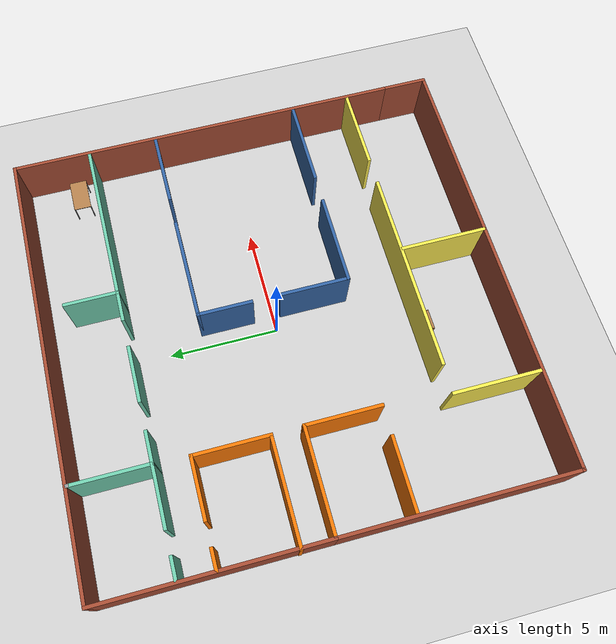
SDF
<sdf version="1.6">
 <world name="default">
  <plugin filename="libwelcome_message.so" name="hello"/>
  <light name="sun" type="directional">
   <pose>0 0 10 0 -0 0</pose>
   <diffuse>0.8 0.8 0.8 1</diffuse>
   <specular>0.2 0.2 0.2 1</specular>
   <attenuation>
    <range>1000</range>
    <constant>0.9</constant>
    <linear>0.01</linear>
    <quadratic>0.001</quadratic>
   </attenuation>
   <direction>-0.5 0.1 -0.9</direction>
  </light>
  <model name="ground_plane">
   <static>1</static>
   <link name="link">
    <collision name="collision">
     <geometry><plane><normal>0 0 1</normal><size>100 100</size></plane></geometry>
     <surface>
      <contact><collide_bitmask>65535</collide_bitmask></contact>
      <friction><ode><mu>100</mu><mu2>50</mu2></ode></friction>
     </surface>
    </collision>
    <visual name="visual">
     <cast_shadows>0</cast_shadows>
     <geometry><plane><normal>0 0 1</normal><size>100 100</size></plane></geometry>
     <material>
      <script><uri>file://media/materials/scripts/gazebo.material</uri><name>Gazebo/Grey</name></script>
     </material>
    </visual>
   </link>
  </model>
  <gravity>0 0 -9.8</gravity>
  <magnetic_field>6e-06 2.3e-05 -4.2e-05</magnetic_field>
  <atmosphere type="adiabatic"/>
  <physics default="0" name="default_physics" type="ode">
   <max_step_size>0.001</max_step_size>
   <real_time_factor>1</real_time_factor>
   <real_time_update_rate>1000</real_time_update_rate>
  </physics>
  <scene><ambient>0.4 0.4 0.4 1</ambient><background>0.7 0.7 0.7 1</background><shadows>1</shadows></scene>
  <audio><device>default</device></audio>
  <spherical_coordinates>
   <surface_model>EARTH_WGS84</surface_model>
   <latitude_deg>0</latitude_deg>
   <longitude_deg>0</longitude_deg>
   <elevation>0</elevation>
   <heading_deg>0</heading_deg>
  </spherical_coordinates>
  <model name="Building">
   <pose>0.112706 -0.057024 0 0 -0 0</pose>
   <link name="Wall_20">
    <collision name="Wall_20_Collision">
     <geometry><box><size>10 0.15 2.5</size></box></geometry>
     <pose>0 0 1.25 0 -0 0</pose>
    </collision>
    <visual name="Wall_20_Visual">
     <pose>0 0 1.25 0 -0 0</pose>
     <geometry><box><size>10 0.15 2.5</size></box></geometry>
     <material>
      <script><uri>file://media/materials/scripts/gazebo.material</uri><name>Gazebo/Bricks</name></script>
      <ambient>1 1 1 1</ambient>
     </material>
     <meta><layer>0</layer></meta>
    </visual>
    <pose>-9.90862 5.175 0 0 -0 -1.5708</pose>
   </link>
   <link name="Wall_22">
    <collision name="Wall_22_Collision">
     <geometry><box><size>10.5 0.15 2.5</size></box></geometry>
     <pose>0 0 1.25 0 -0 0</pose>
    </collision>
    <visual name="Wall_22_Visual">
     <pose>0 0 1.25 0 -0 0</pose>
     <geometry><box><size>10.5 0.15 2.5</size></box></geometry>
     <material>
      <script><uri>file://media/materials/scripts/gazebo.material</uri><name>Gazebo/Bricks</name></script>
      <ambient>1 1 1 1</ambient>
     </material>
     <meta><layer>0</layer></meta>
    </visual>
    <pose>-9.90862 -4.925 0 0 -0 -1.5708</pose>
   </link>
   <link name="Wall_24">
    <collision name="Wall_24_Collision">
     <geometry><box><size>20 0.15 2.5</size></box></geometry>
     <pose>0 0 1.25 0 -0 0</pose>
    </collision>
    <visual name="Wall_24_Visual">
     <pose>0 0 1.25 0 -0 0</pose>
     <geometry><box><size>20 0.15 2.5</size></box></geometry>
     <material>
      <script><uri>file://media/materials/scripts/gazebo.material</uri><name>Gazebo/Bricks</name></script>
      <ambient>1 1 1 1</ambient>
     </material>
     <meta><layer>0</layer></meta>
    </visual>
    <pose>0.016381 10.1 0 0 -0 0</pose>
   </link>
   <link name="Wall_26">
    <collision name="Wall_26_Collision">
     <geometry><box><size>18.25 0.15 2.5</size></box></geometry>
     <pose>0 0 1.25 0 -0 0</pose>
    </collision>
    <visual name="Wall_26_Visual">
     <pose>0 0 1.25 0 -0 0</pose>
     <geometry><box><size>18.25 0.15 2.5</size></box></geometry>
     <material>
      <script><uri>file://media/materials/scripts/gazebo.material</uri><name>Gazebo/Bricks</name></script>
      <ambient>1 1 1 1</ambient>
     </material>
     <meta><layer>0</layer></meta>
    </visual>
    <pose>9.94138 1.01522 0 0 -0 -1.5708</pose>
   </link>
   <link name="Wall_28">
    <collision name="Wall_28_Collision">
     <geometry><box><size>20 0.15 2.5</size></box></geometry>
     <pose>0 0 1.25 0 -0 0</pose>
    </collision>
    <visual name="Wall_28_Visual">
     <pose>0 0 1.25 0 -0 0</pose>
     <geometry><box><size>20 0.15 2.5</size></box></geometry>
     <material>
      <script><uri>file://media/materials/scripts/gazebo.material</uri><name>Gazebo/Bricks</name></script>
      <ambient>1 1 1 1</ambient>
     </material>
     <meta><layer>0</layer></meta>
    </visual>
    <pose>0.016381 -10.1 0 0 -0 0</pose>
   </link>
   <link name="Wall_29">
    <collision name="Wall_29_Collision">
     <geometry><box><size>2.5 0.15 2.5</size></box></geometry>
     <pose>0 0 1.25 0 -0 0</pose>
    </collision>
    <visual name="Wall_29_Visual">
     <pose>0 0 1.25 0 -0 0</pose>
     <geometry><box><size>2.5 0.15 2.5</size></box></geometry>
     <material>
      <script><uri>file://media/materials/scripts/gazebo.material</uri><name>Gazebo/Bricks</name></script>
      <ambient>1 1 1 1</ambient>
     </material>
     <meta><layer>0</layer></meta>
    </visual>
    <pose>9.94138 -8.925 0 0 -0 1.5708</pose>
   </link>
   <link name="Wall_33">
    <collision name="Wall_33_Collision">
     <geometry><box><size>1 0.15 2.5</size></box></geometry>
     <pose>0 0 1.25 0 -0 0</pose>
    </collision>
    <visual name="Wall_33_Visual">
     <pose>0 0 1.25 0 -0 0</pose>
     <geometry><box><size>1 0.15 2.5</size></box></geometry>
     <material>
      <script><uri>file://media/materials/scripts/gazebo.material</uri><name>Gazebo/Grey</name></script>
      <ambient>0.435294 0.796078 0.67451 1</ambient>
     </material>
     <meta><layer>0</layer></meta>
    </visual>
    <pose>-9.38218 6.58003 0 0 -0 0</pose>
   </link>
   <link name="Wall_37">
    <collision name="Wall_37_Collision">
     <geometry><box><size>2.75 0.15 2.5</size></box></geometry>
     <pose>0 0 1.25 0 -0 0</pose>
    </collision>
    <visual name="Wall_37_Visual">
     <pose>0 0 1.25 0 -0 0</pose>
     <geometry><box><size>2.75 0.15 2.5</size></box></geometry>
     <material>
      <script><uri>file://media/materials/scripts/gazebo.material</uri><name>Gazebo/Grey</name></script>
      <ambient>0.435294 0.796078 0.67451 1</ambient>
     </material>
     <meta><layer>0</layer></meta>
    </visual>
    <pose>-6.55733 6.58022 0 0 -0 0.000148</pose>
   </link>
   <link name="Wall_38">
    <collision name="Wall_38_Collision">
     <geometry><box><size>3.6 0.15 2.5</size></box></geometry>
     <pose>0 0 1.25 0 -0 0</pose>
    </collision>
    <visual name="Wall_38_Visual">
     <pose>0 0 1.25 0 -0 0</pose>
     <geometry><box><size>3.6 0.15 2.5</size></box></geometry>
     <material>
      <script><uri>file://media/materials/scripts/gazebo.material</uri><name>Gazebo/Grey</name></script>
      <ambient>0.435294 0.796078 0.67451 1</ambient>
     </material>
     <meta><layer>0</layer></meta>
    </visual>
    <pose>-5.25748 8.30541 0 0 -0 1.5708</pose>
   </link>
   <link name="Wall_39">
    <collision name="Wall_39_Collision">
     <geometry><box><size>0.15 0.15 2.5</size></box></geometry>
     <pose>0 0 1.25 0 -0 0</pose>
    </collision>
    <visual name="Wall_39_Visual">
     <pose>0 0 1.25 0 -0 0</pose>
     <geometry><box><size>0.15 0.15 2.5</size></box></geometry>
     <material>
      <script><uri>file://media/materials/scripts/gazebo.material</uri><name>Gazebo/Grey</name></script>
      <ambient>1 1 1 1</ambient>
     </material>
     <meta><layer>0</layer></meta>
    </visual>
    <pose>-5.25748 10.0304 0 0 -0 0</pose>
   </link>
   <link name="Wall_41">
    <collision name="Wall_41_Collision">
     <geometry><box><size>1 0.15 2.5</size></box></geometry>
     <pose>0 0 1.25 0 -0 0</pose>
    </collision>
    <visual name="Wall_41_Visual">
     <pose>0 0 1.25 0 -0 0</pose>
     <geometry><box><size>1 0.15 2.5</size></box></geometry>
     <material>
      <script><uri>file://media/materials/scripts/gazebo.material</uri><name>Gazebo/Grey</name></script>
      <ambient>0.996078 0.47451 0.0196078 1</ambient>
     </material>
     <meta><layer>0</layer></meta>
    </visual>
    <pose>-9.47948 5.00841 0 0 -0 0</pose>
   </link>
   <link name="Wall_53">
    <collision name="Wall_53_Collision">
     <geometry><box><size>2.75 0.15 2.5</size></box></geometry>
     <pose>0 0 1.25 0 -0 0</pose>
    </collision>
    <visual name="Wall_53_Visual">
     <pose>0 0 1.25 0 -0 0</pose>
     <geometry><box><size>2.75 0.15 2.5</size></box></geometry>
     <material>
      <script><uri>file://media/materials/scripts/gazebo.material</uri><name>Gazebo/Grey</name></script>
      <ambient>0.996078 0.47451 0.0196078 1</ambient>
     </material>
     <meta><layer>0</layer></meta>
    </visual>
    <pose>-6.64148 5.00841 0 0 -0 0</pose>
   </link>
   <link name="Wall_55">
    <collision name="Wall_55_Collision">
     <geometry><box><size>3.50046 0.15 2.5</size></box></geometry>
     <pose>0 0 1.25 0 -0 0</pose>
    </collision>
    <visual name="Wall_55_Visual">
     <pose>0 0 1.25 0 -0 0</pose>
     <geometry><box><size>3.50046 0.15 2.5</size></box></geometry>
     <material>
      <script><uri>file://media/materials/scripts/gazebo.material</uri><name>Gazebo/Grey</name></script>
      <ambient>0.996078 0.47451 0.0196078 1</ambient>
     </material>
     <meta><layer>0</layer></meta>
    </visual>
    <pose>-5.34144 3.33318 0 0 -0 -1.57077</pose>
   </link>
   <link name="Wall_56">
    <collision name="Wall_56_Collision">
     <geometry><box><size>4.75 0.15 2.5</size></box></geometry>
     <pose>0 0 1.25 0 -0 0</pose>
    </collision>
    <visual name="Wall_56_Visual">
     <pose>0 0 1.25 0 -0 0</pose>
     <geometry><box><size>4.75 0.15 2.5</size></box></geometry>
     <material>
      <script><uri>file://media/materials/scripts/gazebo.material</uri><name>Gazebo/Grey</name></script>
      <ambient>0.996078 0.47451 0.0196078 1</ambient>
     </material>
     <meta><layer>0</layer></meta>
    </visual>
    <pose>-7.6414 1.65796 0 0 -0 3.14159</pose>
   </link>
   <link name="Wall_58">
    <collision name="Wall_58_Collision">
     <geometry><box><size>1.5 0.15 2.5</size></box></geometry>
     <pose>0 0 1.25 0 -0 0</pose>
    </collision>
    <visual name="Wall_58_Visual">
     <pose>0 0 1.25 0 -0 0</pose>
     <geometry><box><size>1.5 0.15 2.5</size></box></geometry>
     <material>
      <script><uri>file://media/materials/scripts/gazebo.material</uri><name>Gazebo/Grey</name></script>
      <ambient>0.435294 0.796078 0.67451 1</ambient>
     </material>
     <meta><layer>0</layer></meta>
    </visual>
    <pose>-4.58248 6.58041 0 0 -0 0</pose>
   </link>
   <link name="Wall_60">
    <collision name="Wall_60_Collision">
     <geometry><box><size>2.5532 0.15 2.5</size></box></geometry>
     <pose>0 0 1.25 0 -0 0</pose>
    </collision>
    <visual name="Wall_60_Visual">
     <pose>0 0 1.25 0 -0 0</pose>
     <geometry><box><size>2.5532 0.15 2.5</size></box></geometry>
     <material>
      <script><uri>file://media/materials/scripts/gazebo.material</uri><name>Gazebo/Grey</name></script>
      <ambient>0.435294 0.796078 0.67451 1</ambient>
     </material>
     <meta><layer>0</layer></meta>
    </visual>
    <pose>-1.35588 6.58041 0 0 -0 0</pose>
   </link>
   <link name="Wall_62">
    <collision name="Wall_62_Collision">
     <geometry><box><size>1.4468 0.15 2.5</size></box></geometry>
     <pose>0 0 1.25 0 -0 0</pose>
    </collision>
    <visual name="Wall_62_Visual">
     <pose>0 0 1.25 0 -0 0</pose>
     <geometry><box><size>1.4468 0.15 2.5</size></box></geometry>
     <material>
      <script><uri>file://media/materials/scripts/gazebo.material</uri><name>Gazebo/Grey</name></script>
      <ambient>0.435294 0.796078 0.67451 1</ambient>
     </material>
     <meta><layer>0</layer></meta>
    </visual>
    <pose>1.84412 6.58041 0 0 -0 0</pose>
   </link>
   <link name="Wall_63">
    <collision name="Wall_63_Collision">
     <geometry><box><size>2.5 0.15 2.5</size></box></geometry>
     <pose>0 0 1.25 0 -0 0</pose>
    </collision>
    <visual name="Wall_63_Visual">
     <pose>0 0 1.25 0 -0 0</pose>
     <geometry><box><size>2.5 0.15 2.5</size></box></geometry>
     <material>
      <script><uri>file://media/materials/scripts/gazebo.material</uri><name>Gazebo/Grey</name></script>
      <ambient>0.435294 0.796078 0.67451 1</ambient>
     </material>
     <meta><layer>0</layer></meta>
    </visual>
    <pose>2.49252 7.75541 0 0 -0 1.5708</pose>
   </link>
   <link name="Wall_65">
    <collision name="Wall_65_Collision">
     <geometry><box><size>7.5 0.15 2.5</size></box></geometry>
     <pose>0 0 1.25 0 -0 0</pose>
    </collision>
    <visual name="Wall_65_Visual">
     <pose>0 0 1.25 0 -0 0</pose>
     <geometry><box><size>7.5 0.15 2.5</size></box></geometry>
     <material>
      <script><uri>file://media/materials/scripts/gazebo.material</uri><name>Gazebo/Grey</name></script>
      <ambient>0.435294 0.796078 0.67451 1</ambient>
     </material>
     <meta><layer>0</layer></meta>
    </visual>
    <pose>6.16752 6.58041 0 0 -0 0</pose>
   </link>
   <link name="Wall_67">
    <collision name="Wall_67_Collision">
     <geometry><box><size>4.75 0.15 2.5</size></box></geometry>
     <pose>0 0 1.25 0 -0 0</pose>
    </collision>
    <visual name="Wall_67_Visual">
     <pose>0 0 1.25 0 -0 0</pose>
     <geometry><box><size>4.75 0.15 2.5</size></box></geometry>
     <material>
      <script><uri>file://media/materials/scripts/gazebo.material</uri><name>Gazebo/Grey</name></script>
      <ambient>0.996078 0.47451 0.0196078 1</ambient>
     </material>
     <meta><layer>0</layer></meta>
    </visual>
    <pose>-7.60862 0.25 0 0 -0 0</pose>
   </link>
   <link name="Wall_68">
    <collision name="Wall_68_Collision">
     <geometry><box><size>3.5 0.15 2.5</size></box></geometry>
     <pose>0 0 1.25 0 -0 0</pose>
    </collision>
    <visual name="Wall_68_Visual">
     <pose>0 0 1.25 0 -0 0</pose>
     <geometry><box><size>3.5 0.15 2.5</size></box></geometry>
     <material>
      <script><uri>file://media/materials/scripts/gazebo.material</uri><name>Gazebo/Grey</name></script>
      <ambient>0.996078 0.47451 0.0196078 1</ambient>
     </material>
     <meta><layer>0</layer></meta>
    </visual>
    <pose>-5.30862 -1.425 0 0 -0 -1.5708</pose>
   </link>
   <link name="Wall_71">
    <collision name="Wall_71_Collision">
     <geometry><box><size>3.25 0.15 2.5</size></box></geometry>
     <pose>0 0 1.25 0 -0 0</pose>
    </collision>
    <visual name="Wall_71_Visual">
     <pose>0 0 1.25 0 -0 0</pose>
     <geometry><box><size>3.25 0.15 2.5</size></box></geometry>
     <material>
      <script><uri>file://media/materials/scripts/gazebo.material</uri><name>Gazebo/Grey</name></script>
      <ambient>0.996078 0.47451 0.0196078 1</ambient>
     </material>
     <meta><layer>0</layer></meta>
    </visual>
    <pose>-8.20862 -3.1 0 0 -0 3.14159</pose>
   </link>
   <link name="Wall_73">
    <collision name="Wall_73_Collision">
     <geometry><box><size>4 0.15 2.5</size></box></geometry>
     <pose>0 0 1.25 0 -0 0</pose>
    </collision>
    <visual name="Wall_73_Visual">
     <pose>0 0 1.25 0 -0 0</pose>
     <geometry><box><size>4 0.15 2.5</size></box></geometry>
     <material>
      <script><uri>file://media/materials/scripts/gazebo.material</uri><name>Gazebo/Grey</name></script>
      <ambient>0.988235 0.913725 0.309804 1</ambient>
     </material>
     <meta><layer>0</layer></meta>
    </visual>
    <pose>-5.58379 -8.05698 0 0 -0 1.5708</pose>
   </link>
   <link name="Wall_76">
    <collision name="Wall_76_Collision">
     <geometry><box><size>9.25 0.15 2.5</size></box></geometry>
     <pose>0 0 1.25 0 -0 0</pose>
    </collision>
    <visual name="Wall_76_Visual">
     <pose>0 0 1.25 0 -0 0</pose>
     <geometry><box><size>9.25 0.15 2.5</size></box></geometry>
     <material>
      <script><uri>file://media/materials/scripts/gazebo.material</uri><name>Gazebo/Grey</name></script>
      <ambient>0.988235 0.913725 0.309804 1</ambient>
     </material>
     <meta><layer>0</layer></meta>
    </visual>
    <pose>0.316206 -6.13198 0 0 -0 0</pose>
   </link>
   <link name="Wall_78">
    <collision name="Wall_78_Collision">
     <geometry><box><size>3.75 0.15 2.5</size></box></geometry>
     <pose>0 0 1.25 0 -0 0</pose>
    </collision>
    <visual name="Wall_78_Visual">
     <pose>0 0 1.25 0 -0 0</pose>
     <geometry><box><size>3.75 0.15 2.5</size></box></geometry>
     <material>
      <script><uri>file://media/materials/scripts/gazebo.material</uri><name>Gazebo/Grey</name></script>
      <ambient>0.988235 0.913725 0.309804 1</ambient>
     </material>
     <meta><layer>0</layer></meta>
    </visual>
    <pose>8.01621 -6.13198 0 0 -0 0</pose>
   </link>
   <link name="Wall_80">
    <collision name="Wall_80_Collision">
     <geometry><box><size>4 0.15 2.5</size></box></geometry>
     <pose>0 0 1.25 0 -0 0</pose>
    </collision>
    <visual name="Wall_80_Visual">
     <pose>0 0 1.25 0 -0 0</pose>
     <geometry><box><size>4 0.15 2.5</size></box></geometry>
     <material>
      <script><uri>file://media/materials/scripts/gazebo.material</uri><name>Gazebo/Grey</name></script>
      <ambient>0.988235 0.913725 0.309804 1</ambient>
     </material>
     <meta><layer>0</layer></meta>
    </visual>
    <pose>1.34753 -8.12889 0 0 -0 -1.5708</pose>
   </link>
   <link name="Wall_82">
    <collision name="Wall_82_Collision">
     <geometry><box><size>3.46522 0.15 2.5</size></box></geometry>
     <pose>0 0 1.25 0 -0 0</pose>
    </collision>
    <visual name="Wall_82_Visual">
     <pose>0 0 1.25 0 -0 0</pose>
     <geometry><box><size>3.46522 0.15 2.5</size></box></geometry>
     <material>
      <script><uri>file://media/materials/scripts/gazebo.material</uri><name>Gazebo/Grey</name></script>
      <ambient>0.203922 0.396078 0.643137 1</ambient>
     </material>
     <meta><layer>0</layer></meta>
    </visual>
    <pose>8.21166 3.39611 0 0 -0 3.14159</pose>
   </link>
   <link name="Wall_87">
    <collision name="Wall_87_Collision">
     <geometry><box><size>3.21023 0.15 2.5</size></box></geometry>
     <pose>0 0 1.25 0 -0 0</pose>
    </collision>
    <visual name="Wall_87_Visual">
     <pose>0 0 1.25 0 -0 0</pose>
     <geometry><box><size>3.21023 0.15 2.5</size></box></geometry>
     <material>
      <script><uri>file://media/materials/scripts/gazebo.material</uri><name>Gazebo/Grey</name></script>
      <ambient>0.203922 0.396078 0.643137 1</ambient>
     </material>
     <meta><layer>0</layer></meta>
    </visual>
    <pose>0.569265 -1.87377 0 0 -0 -1.5708</pose>
   </link>
   <link name="Wall_88">
    <collision name="Wall_88_Collision">
     <geometry><box><size>4.18044 0.15 2.5</size></box></geometry>
     <pose>0 0 1.25 0 -0 0</pose>
    </collision>
    <visual name="Wall_88_Visual">
     <pose>0 0 1.25 0 -0 0</pose>
     <geometry><box><size>4.18044 0.15 2.5</size></box></geometry>
     <material>
      <script><uri>file://media/materials/scripts/gazebo.material</uri><name>Gazebo/Grey</name></script>
      <ambient>0.203922 0.396078 0.643137 1</ambient>
     </material>
     <meta><layer>0</layer></meta>
    </visual>
    <pose>2.58448 -3.40388 0 0 -0 0</pose>
   </link>
   <link name="Wall_90">
    <collision name="Wall_90_Collision">
     <geometry><box><size>4.06956 0.15 2.5</size></box></geometry>
     <pose>0 0 1.25 0 -0 0</pose>
    </collision>
    <visual name="Wall_90_Visual">
     <pose>0 0 1.25 0 -0 0</pose>
     <geometry><box><size>4.06956 0.15 2.5</size></box></geometry>
     <material>
      <script><uri>file://media/materials/scripts/gazebo.material</uri><name>Gazebo/Grey</name></script>
      <ambient>0.203922 0.396078 0.643137 1</ambient>
     </material>
     <meta><layer>0</layer></meta>
    </visual>
    <pose>7.90948 -3.40388 0 0 -0 0</pose>
   </link>
   <link name="Wall_93">
    <collision name="Wall_93_Collision">
     <geometry><box><size>2.53977 0.15 2.5</size></box></geometry>
     <pose>0 0 1.25 0 -0 0</pose>
    </collision>
    <visual name="Wall_93_Visual">
     <pose>0 0 1.25 0 -0 0</pose>
     <geometry><box><size>2.53977 0.15 2.5</size></box></geometry>
     <material>
      <script><uri>file://media/materials/scripts/gazebo.material</uri><name>Gazebo/Grey</name></script>
      <ambient>0.203922 0.396078 0.643137 1</ambient>
     </material>
     <meta><layer>0</layer></meta>
    </visual>
    <pose>0.569265 2.20123 0 0 -0 1.5708</pose>
   </link>
   <link name="Wall_94">
    <collision name="Wall_94_Collision">
     <geometry><box><size>4.75 0.15 2.5</size></box></geometry>
     <pose>0 0 1.25 0 -0 0</pose>
    </collision>
    <visual name="Wall_94_Visual">
     <pose>0 0 1.25 0 -0 0</pose>
     <geometry><box><size>4.75 0.15 2.5</size></box></geometry>
     <material>
      <script><uri>file://media/materials/scripts/gazebo.material</uri><name>Gazebo/Grey</name></script>
      <ambient>0.203922 0.396078 0.643137 1</ambient>
     </material>
     <meta><layer>0</layer></meta>
    </visual>
    <pose>2.86926 3.39611 0 0 -0 0</pose>
   </link>
   <static>1</static>
  </model>
  <model name="bookshelf">
   <static>1</static>
   <link name="link">
    <inertial><mass>1</mass></inertial>
    <collision name="back">
     <pose>0 0.005 0.6 0 -0 0</pose>
     <geometry><box><size>0.9 0.01 1.2</size></box></geometry>
    </collision>
    <visual name="visual1">
     <pose>0 0.005 0.6 0 -0 0</pose>
     <geometry><box><size>0.9 0.01 1.2</size></box></geometry>
     <material>
      <script><uri>file://media/materials/scripts/gazebo.material</uri><name>Gazebo/Wood</name></script>
     </material>
    </visual>
    <collision name="left_side">
     <pose>0.45 -0.195 0.6 0 -0 0</pose>
     <geometry><box><size>0.02 0.4 1.2</size></box></geometry>
    </collision>
    <visual name="visual2">
     <pose>0.45 -0.195 0.6 0 -0 0</pose>
     <geometry><box><size>0.02 0.4 1.2</size></box></geometry>
     <material>
      <script><uri>file://media/materials/scripts/gazebo.material</uri><name>Gazebo/Wood</name></script>
     </material>
    </visual>
    <collision name="right_side">
     <pose>-0.45 -0.195 0.6 0 -0 0</pose>
     <geometry><box><size>0.02 0.4 1.2</size></box></geometry>
    </collision>
    <visual name="visual3">
     <pose>-0.45 -0.195 0.6 0 -0 0</pose>
     <geometry><box><size>0.02 0.4 1.2</size></box></geometry>
     <material>
      <script><uri>file://media/materials/scripts/gazebo.material</uri><name>Gazebo/Wood</name></script>
     </material>
    </visual>
    <collision name="bottom">
     <pose>0 -0.195 0.03 0 -0 0</pose>
     <geometry><box><size>0.88 0.4 0.06</size></box></geometry>
    </collision>
    <visual name="visual4">
     <pose>0 -0.195 0.03 0 -0 0</pose>
     <geometry><box><size>0.88 0.4 0.06</size></box></geometry>
     <material>
      <script><uri>file://media/materials/scripts/gazebo.material</uri><name>Gazebo/Wood</name></script>
     </material>
    </visual>
    <collision name="top">
     <pose>0 -0.195 1.19 0 -0 0</pose>
     <geometry><box><size>0.88 0.4 0.02</size></box></geometry>
    </collision>
    <visual name="visual5">
     <pose>0 -0.195 1.19 0 -0 0</pose>
     <geometry><box><size>0.88 0.4 0.02</size></box></geometry>
     <material>
      <script><uri>file://media/materials/scripts/gazebo.material</uri><name>Gazebo/Wood</name></script>
     </material>
    </visual>
    <collision name="low_shelf">
     <pose>0 -0.195 0.43 0 -0 0</pose>
     <geometry><box><size>0.88 0.4 0.02</size></box></geometry>
    </collision>
    <visual name="visual6">
     <pose>0 -0.195 0.43 0 -0 0</pose>
     <geometry><box><size>0.88 0.4 0.02</size></box></geometry>
     <material>
      <script><uri>file://media/materials/scripts/gazebo.material</uri><name>Gazebo/Wood</name></script>
     </material>
    </visual>
    <collision name="high_shelf">
     <pose>0 -0.195 0.8 0 -0 0</pose>
     <geometry><box><size>0.88 0.4 0.02</size></box></geometry>
    </collision>
    <visual name="visual7">
     <pose>0 -0.195 0.8 0 -0 0</pose>
     <geometry><box><size>0.88 0.4 0.02</size></box></geometry>
     <material>
      <script><uri>file://media/materials/scripts/gazebo.material</uri><name>Gazebo/Wood</name></script>
     </material>
    </visual>
   </link>
   <pose>-1.67387 -6.3838 0 0 -0 0</pose>
  </model>
  <model name="table">
   <static>1</static>
   <link name="link">
    <collision name="surface">
     <pose>0 0 1 0 -0 0</pose>
     <geometry><box><size>1.5 0.8 0.03</size></box></geometry>
     <surface><friction><ode><mu>0.6</mu><mu2>0.6</mu2></ode></friction></surface>
    </collision>
    <visual name="visual1">
     <pose>0 0 1 0 -0 0</pose>
     <geometry><box><size>1.5 0.8 0.03</size></box></geometry>
     <material>
      <script><uri>file://media/materials/scripts/gazebo.material</uri><name>Gazebo/Wood</name></script>
     </material>
    </visual>
    <collision name="front_left_leg">
     <pose>0.68 0.38 0.5 0 -0 0</pose>
     <geometry><cylinder><radius>0.02</radius><length>1</length></cylinder></geometry>
    </collision>
    <visual name="front_left_leg">
     <pose>0.68 0.38 0.5 0 -0 0</pose>
     <geometry><cylinder><radius>0.02</radius><length>1</length></cylinder></geometry>
     <material>
      <script><uri>file://media/materials/scripts/gazebo.material</uri><name>Gazebo/Grey</name></script>
     </material>
    </visual>
    <collision name="front_right_leg">
     <pose>0.68 -0.38 0.5 0 -0 0</pose>
     <geometry><cylinder><radius>0.02</radius><length>1</length></cylinder></geometry>
    </collision>
    <visual name="front_right_leg">
     <pose>0.68 -0.38 0.5 0 -0 0</pose>
     <geometry><cylinder><radius>0.02</radius><length>1</length></cylinder></geometry>
     <material>
      <script><uri>file://media/materials/scripts/gazebo.material</uri><name>Gazebo/Grey</name></script>
     </material>
    </visual>
    <collision name="back_right_leg">
     <pose>-0.68 -0.38 0.5 0 -0 0</pose>
     <geometry><cylinder><radius>0.02</radius><length>1</length></cylinder></geometry>
    </collision>
    <visual name="back_right_leg">
     <pose>-0.68 -0.38 0.5 0 -0 0</pose>
     <geometry><cylinder><radius>0.02</radius><length>1</length></cylinder></geometry>
     <material>
      <script><uri>file://media/materials/scripts/gazebo.material</uri><name>Gazebo/Grey</name></script>
     </material>
    </visual>
    <collision name="back_left_leg">
     <pose>-0.68 0.38 0.5 0 -0 0</pose>
     <geometry><cylinder><radius>0.02</radius><length>1</length></cylinder></geometry>
    </collision>
    <visual name="back_left_leg">
     <pose>-0.68 0.38 0.5 0 -0 0</pose>
     <geometry><cylinder><radius>0.02</radius><length>1</length></cylinder></geometry>
     <material>
      <script><uri>file://media/materials/scripts/gazebo.material</uri><name>Gazebo/Grey</name></script>
     </material>
    </visual>
   </link>
   <pose>8.84678 7.50058 0 0 -0 0</pose>
  </model>
 </world>
</sdf>
